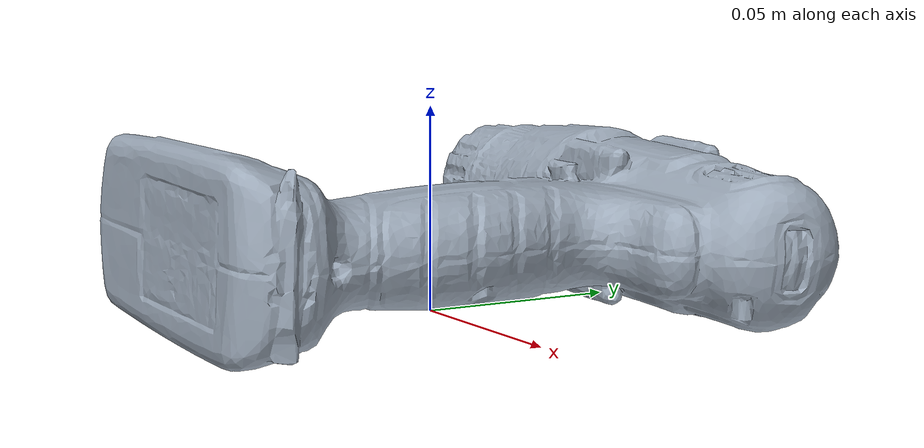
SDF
<?xml version="1.0"?>
<!-- Generated by generate_models.py. Benchmark mass and collision
     approximations are documented in physics_models.json. -->
<sdf version="1.7" xmlns:drake="http://drake.mit.edu">
  <model name="power_drill_controller"><link name="power_drill_base">
    <inertial><pose>0.0121920346181 0.0110106625163 0.0213924964168 0 0 0</pose>
      <mass>0.1</mass><inertia><ixx>0.000255264420462</ixx><iyy>0.000104130518088</iyy><izz>0.000341987111777</izz><ixy>2.63206179598e-05</ixy><ixz>2.02641515749e-06</ixz><iyz>5.16598266266e-06</iyz></inertia></inertial>
    <visual name="object_visual"><geometry><mesh><uri>power_drill_centered.obj</uri>
      </mesh></geometry><material><diffuse>0.62 0.67 0.73 1</diffuse></material></visual>
    <collision name="hull_00"><geometry><mesh>
      <uri>collision/power_drill_00.obj</uri><drake:declare_convex/></mesh></geometry>
      <drake:proximity_properties><drake:mu_static>0.3</drake:mu_static><drake:mu_dynamic>0.3</drake:mu_dynamic></drake:proximity_properties></collision>
    <collision name="hull_01"><geometry><mesh>
      <uri>collision/power_drill_01.obj</uri><drake:declare_convex/></mesh></geometry>
      <drake:proximity_properties><drake:mu_static>0.3</drake:mu_static><drake:mu_dynamic>0.3</drake:mu_dynamic></drake:proximity_properties></collision>
    <collision name="hull_02"><geometry><mesh>
      <uri>collision/power_drill_02.obj</uri><drake:declare_convex/></mesh></geometry>
      <drake:proximity_properties><drake:mu_static>0.3</drake:mu_static><drake:mu_dynamic>0.3</drake:mu_dynamic></drake:proximity_properties></collision>
    <collision name="hull_03"><geometry><mesh>
      <uri>collision/power_drill_03.obj</uri><drake:declare_convex/></mesh></geometry>
      <drake:proximity_properties><drake:mu_static>0.3</drake:mu_static><drake:mu_dynamic>0.3</drake:mu_dynamic></drake:proximity_properties></collision>
    <collision name="hull_04"><geometry><mesh>
      <uri>collision/power_drill_04.obj</uri><drake:declare_convex/></mesh></geometry>
      <drake:proximity_properties><drake:mu_static>0.3</drake:mu_static><drake:mu_dynamic>0.3</drake:mu_dynamic></drake:proximity_properties></collision>
    <collision name="hull_05"><geometry><mesh>
      <uri>collision/power_drill_05.obj</uri><drake:declare_convex/></mesh></geometry>
      <drake:proximity_properties><drake:mu_static>0.3</drake:mu_static><drake:mu_dynamic>0.3</drake:mu_dynamic></drake:proximity_properties></collision>
    <!-- Native contact wiring requires these three spheres LAST. -->
    <collision name="ground_witness_0"><pose>-0.045332 0.05267 0.001 0 0 0</pose>
      <geometry><sphere><radius>0.001</radius></sphere></geometry>
      <drake:proximity_properties><drake:mu_static>0.3</drake:mu_static><drake:mu_dynamic>0.3</drake:mu_dynamic></drake:proximity_properties></collision>
    <collision name="ground_witness_1"><pose>0.042602 -0.07354 0.001 0 0 0</pose>
      <geometry><sphere><radius>0.001</radius></sphere></geometry>
      <drake:proximity_properties><drake:mu_static>0.3</drake:mu_static><drake:mu_dynamic>0.3</drake:mu_dynamic></drake:proximity_properties></collision>
    <collision name="ground_witness_2"><pose>0.068729 0.05995 0.001 0 0 0</pose>
      <geometry><sphere><radius>0.001</radius></sphere></geometry>
      <drake:proximity_properties><drake:mu_static>0.3</drake:mu_static><drake:mu_dynamic>0.3</drake:mu_dynamic></drake:proximity_properties></collision>
  </link></model>
</sdf>
